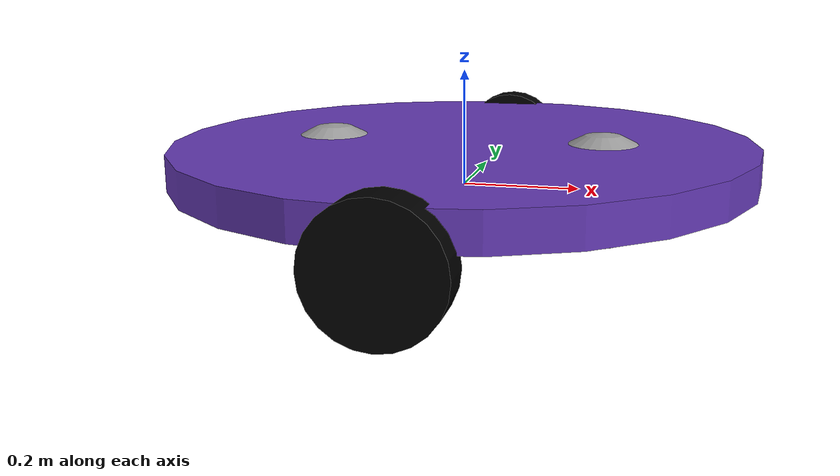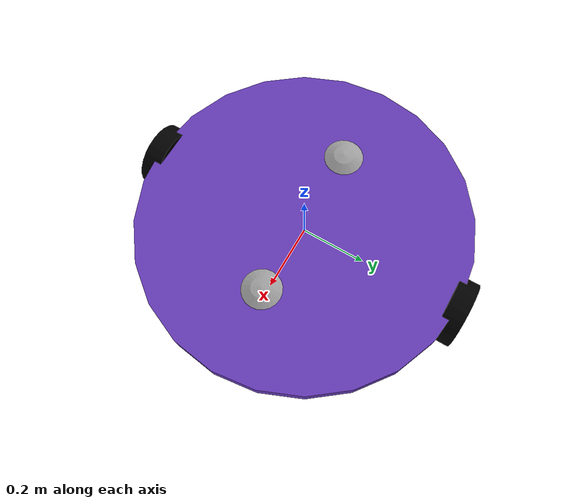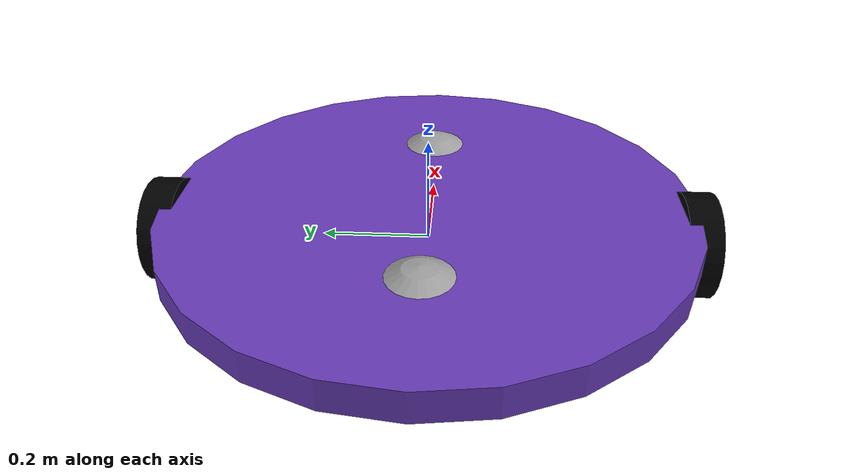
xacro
<?xml version="1.0"?>
<robot xmlns:xacro="http://www.ros.org/wiki/xacro" >

      <xacro:include filename="inertial_macros.xacro" />
      <!-- Base link -->

      <link name="base_link">

      </link>

      <!-- Chassis link -->

      <joint name="chassis_joint" type="fixed">
        <parent link="base_link"/>
        <child link="chassis"/>
        <origin xyz="0 0 0"/>
      </joint>

      <link name="chassis">
  <visual>
    <origin xyz="0 0 0.05"/>
    <geometry>
      <cylinder radius="0.5" length="0.06"/>
    </geometry>
    <material name="chassis_material">
      <color rgba="0.40 0.23 0.72 1.0"/>
    </material>
  </visual>

  <collision>
    <origin xyz="0 0 0.05"/>
    <geometry>
      <cylinder radius="0.5" length="0.1"/>
    </geometry>
  </collision>

<inertial>
      <mass value="10.0"/>
      <inertia ixx="1.0" iyy="1.0" izz="1.0"
               ixy="0.0" ixz="0.0" iyz="0.0"/>
    </inertial>
</link>

      <!-- Left wheel link -->
      <joint name="left_wheel_joint" type="continuous">
        <parent link="chassis"/>
        <child link="left_wheel"/>
        <origin xyz="0 0.5 0" rpy="-${pi/2} 0 0"/>
        <axis xyz="0 0 1"/>
      </joint>

      <link name="left_wheel">
         <visual>
            <geometry>
               <cylinder radius="0.10" length="0.06"/>
            </geometry>
            <material name="wheel_material">
               <color rgba="0.0 0.0 0.0 1.0"/>
            </material>
         </visual>
         <collision>
            <geometry>
               <cylinder radius="0.10" length="0.06"/>
            </geometry>
         </collision>
         <xacro:inertial_cylinder mass="0.1" length="0.06" radius="0.10">
            <origin xyz="0 0 0" rpy="0 0 0"/>
         </xacro:inertial_cylinder>
      </link>

      <!-- Right wheel link -->
      <joint name="right_wheel_joint" type="continuous">
        <parent link="chassis"/>
        <child link="right_wheel"/>
        <origin xyz="0 -0.5 0" rpy="${pi/2} 0 0"/>
        <axis xyz="0 0 -1"/>
      </joint>

      <link name="right_wheel">
         <visual>
            <geometry>
               <cylinder radius="0.10" length="0.06"/>
            </geometry>
            <material name="wheel_material">
                <color rgba="0.0 0.0 0.0 1.0"/>
            </material>
         </visual>
         <collision>
            <geometry>
               <cylinder radius="0.10" length="0.06"/>
            </geometry>
         </collision>
            <xacro:inertial_cylinder mass="0.1" length="0.06" radius="0.10">
            <origin xyz="0 0 0" rpy="0 0 0"/>
         </xacro:inertial_cylinder>
      </link>

      <!-- Castor wheel link -->
      <joint name="castor_wheel_joint" type="fixed">
        <parent link="chassis"/>
        <child link="castor_wheel"/>
        <origin xyz="0.24 0 0"/>
      </joint>

      <joint name="castor_wheel_joint_back" type="fixed">
        <parent link="chassis"/>
        <child link="castor_wheel_back"/>
        <origin xyz="-0.24 0 0"/>
      </joint>

      <link name="castor_wheel">
         <visual>
            <geometry>
               <sphere radius="0.1"/>
            </geometry>
            <material name="castor_material">
                <color rgba="0.62 0.62 0.62 1.0"/>
            </material>
         </visual>
         <collision>
            <geometry>
               <sphere radius="0.1"/>
            </geometry>
         </collision>
         <xacro:inertial_sphere mass="0.1" radius="0.1">
            <origin xyz="0 0 0" rpy="0 0 0"/>
         </xacro:inertial_sphere>
      </link>

       <link name="castor_wheel_back">
         <visual>
            <geometry>
               <sphere radius="0.1"/>
            </geometry>
            <material name="castor_material">
                <color rgba="0.62 0.62 0.62 1.0"/>
            </material>
         </visual>
         <collision>
            <geometry>
               <sphere radius="0.1"/>
            </geometry>
         </collision>
         <xacro:inertial_sphere mass="0.1" radius="0.1">
            <origin xyz="0 0 0" rpy="0 0 0"/>
         </xacro:inertial_sphere>
      </link>

      <!-- Gazebo Parameters -->
      <gazebo reference="chassis_link">
         <mu1>1.0</mu1>
         <mu2>1.0</mu2>
      </gazebo>

      <gazebo reference="right_wheel">
         <mu1>1.0</mu1>
         <mu2>1.0</mu2>
      </gazebo>

      <gazebo reference="left_wheel">
         <mu1>1.0</mu1>
         <mu2>1.0</mu2>
      </gazebo>

      <gazebo reference="castor_wheel">
         <mu1>0.000001</mu1>
         <mu2>0.000001</mu2>
      </gazebo>

      <gazebo reference="castor_wheel_back">
         <mu1>0.000001</mu1>
         <mu2>0.000001</mu2>
      </gazebo>

</robot>
